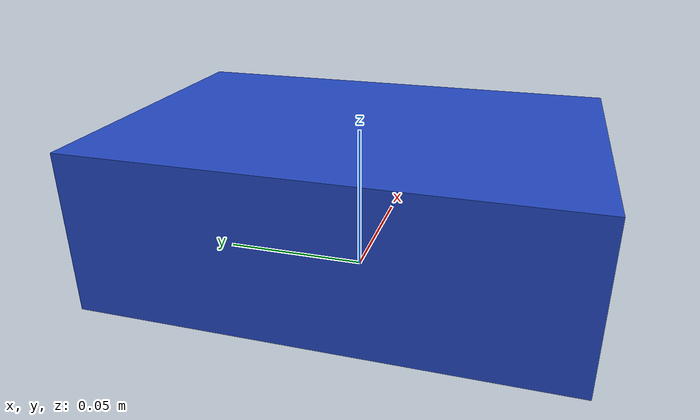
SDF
<?xml version="1.0" ?>
<sdf version="1.5">
  <model name="box indoor small blue">
    <pose>0 0 0.0265  0 0 0</pose>
    <static>flase</static>
    <link name="link">
      <inertial>
        <mass>0.057</mass>
        <inertia>
          <ixx>1</ixx>
          <ixy>0</ixy>
          <ixz>0</ixz>
          <iyy>1</iyy>
          <iyz>0</iyz>
          <izz>1</izz>
        </inertia>
      </inertial>

      <collision name="collision">
        <geometry>
          <box>
              <size>0.105 0.155 0.053</size>
          </box>
        </geometry>
	      <surface>
          <contact>
            <ode>
              <max_vel>0.1</max_vel>
              <min_depth>0.001</min_depth>
            </ode>
          </contact>
        </surface>
      </collision>
      <visual name="visual">
        <geometry>
          <box>
              <size>0.105 0.155 0.053</size>
          </box>
        </geometry>
        <material>
          <script>
            <uri>file://media/materials/scripts/gazebo.material</uri>
            <name>Gazebo/Blue</name>
          </script>
        </material>
      </visual>

    </link>

  </model>
</sdf>
